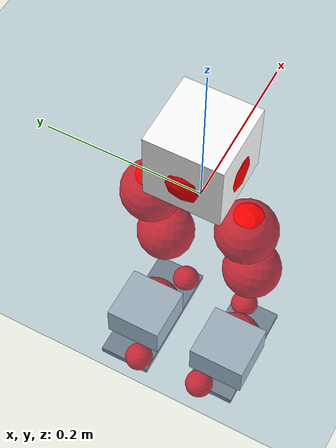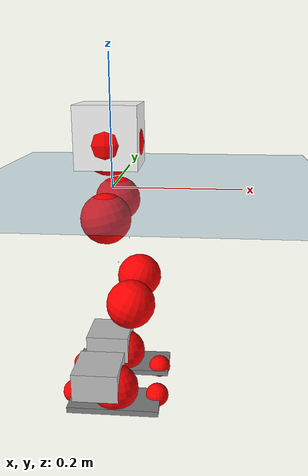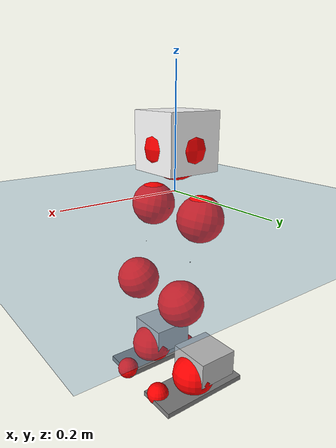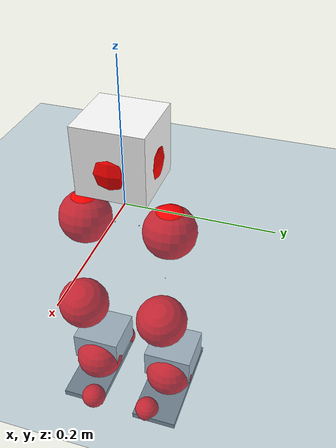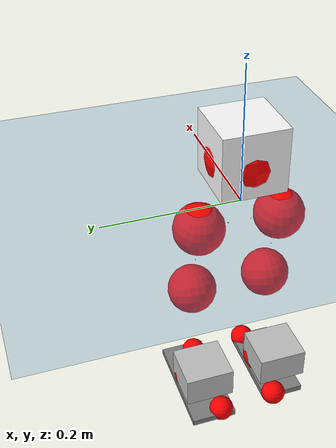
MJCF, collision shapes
<mujoco model="pi_12dof_release_v1">
  <compiler angle="radian" assetdir="assets" balanceinertia="true" inertiafromgeom="false"/>

  <option timestep="0.005" density="1.2" viscosity="2e-05"/>

  <size nkey="1"/>

  <visual>
    <quality shadowsize="8192"/>
    <map shadowclip="0.5"/>
  </visual>

  <default>
    <default class="/">
      <joint armature="0.01" damping="0.01" frictionloss="0.01"/>
      <geom contype="0" conaffinity="0" group="1" solref="-1000 -80"/>
      <site size="0.01 0.005 0.005" group="5"/>
      <general forcelimited="true" biastype="affine" gainprm="20" biasprm="0 -20 -0.5"/>
      <default class="foot">
        <geom size="0.0845 0.036 0.005" type="box" condim="6" group="4" priority="1" friction="0.9 0.2 0.2" solimp="0.015 1 0.005"/>
      </default>
      <default class="reward_collision_sphere">
        <geom group="5" rgba="1 0 0 1"/>
      </default>
    </default>
  </default>

  <asset>
    <texture type="skybox" colorspace="auto" name="//unnamed_texture_0" builtin="gradient" rgb1="0.95 0.95 0.95" rgb2="0.95 0.95 0.95" width="100" height="600"/>
    <texture type="2d" colorspace="auto" name="texplane" builtin="checker" rgb1="0.345 0.575 0.748" rgb2="0.345 0.575 0.748" markrgb="1 1 1" width="512" height="512"/>
    <material name="MatPlane" class="/" texture="texplane" texuniform="true" texrepeat="2 2" specular="0.9"/>
    <mesh name="baselink_1" class="/" file="baselink_1.STL"/>
    <mesh name="r_hip_pitch_link" class="/" file="r_hip_pitch_link.STL"/>
    <mesh name="r_hip_roll_link" class="/" file="r_hip_roll_link.STL"/>
    <mesh name="r_thigh_link" class="/" file="r_thigh_link.STL"/>
    <mesh name="r_calf_link" class="/" file="r_calf_link.STL"/>
    <mesh name="r_ankle_pitch_link" class="/" file="r_ankle_pitch_link.STL"/>
    <mesh name="r_ankle_roll_link" class="/" file="r_ankle_roll_link.STL"/>
    <mesh name="l_hip_pitch_link" class="/" file="l_hip_pitch_link.STL"/>
    <mesh name="l_hip_roll_link" class="/" file="l_hip_roll_link.STL"/>
    <mesh name="l_thigh_link" class="/" file="l_thigh_link.STL"/>
    <mesh name="l_calf_link" class="/" file="l_calf_link.STL"/>
    <mesh name="l_ankle_pitch_link" class="/" file="l_ankle_pitch_link.STL"/>
    <mesh name="l_ankle_roll_link" class="/" file="l_ankle_roll_link.STL"/>
  </asset>

  <worldbody>
    <geom name="floor" class="/" size="100 100 0.125" type="plane" group="0" material="MatPlane"/>
    <light name="toplight_shadow" class="/" pos="0 0 5" dir="0.0990148 0.0990148 -0.990148" type="directional" ambient="0.04 0.04 0.04" diffuse="0.55 0.55 0.55" specular="0.12 0.12 0.12"/>
    <light name="toplight_fill" class="/" pos="0 0 5" dir="0.0990148 0.0990148 -0.990148" type="directional" castshadow="false" ambient="0.04 0.04 0.04" diffuse="0.3 0.3 0.3" specular="0.08 0.08 0.08"/>
    <body name="trunk" pos="-0.00108007 0.000604597 0.000608614" quat="1 -5.46771e-06 3.37855e-06 7.70542e-06">
      <inertial pos="0.000983365 -0.000281936 0.0405183" quat="0.696494 0.00755213 0.0103294 0.717448" mass="1.77147" diaginertia="0.0107024 0.00277258 0.00420102"/>
      <joint name="//unnamed_joint_0" type="free"/>
      <geom name="//unnamed_geom_1" class="/" type="mesh" density="0" rgba="1 1 1 1" mesh="baselink_1"/>
      <geom name="//unnamed_geom_2" class="/" size="0.0468251 0.0468251 0.0468251" pos="0 0 0.0800698" type="box" rgba="1 1 1 1"/>
      <geom name="//unnamed_geom_3" class="reward_collision_sphere" size="0.0515076" pos="0 0 0.0700611"/>
      <site name="imu" class="/" pos="-0.001058 -0.00231976 -0.000572681" size="0.00936502"/>
      <camera name="track" class="/" pos="0 -1.58043 0" quat="0.707107 0.707107 0 0" mode="trackcom"/>
      <camera name="ego_camera" class="/" pos="0.0763814 0 0.180157" quat="-0.5 -0.5 0.5 0.5"/>
      <body name="r_hip_pitch_link" pos="0.000530541 -0.0165636 -0.0339031" quat="0.992215 -0.000359981 -0.124536 0.000109093">
        <inertial pos="-0.000315632 -0.0436326 0.0010383" quat="-0.019614 0.706943 -0.0281703 0.706437" mass="0.303945" diaginertia="0.000118757 3.00489e-05 8.28384e-05"/>
        <joint name="r_hip_pitch_joint" class="/" pos="0 0 0" axis="-0.00652706 -0.999977 -0.00188766" range="-1.74705 1.24595" armature="0.00932102" damping="0.0155705" frictionloss="0.00910903"/>
        <geom name="//unnamed_geom_4" class="/" type="mesh" density="0" rgba="0.75294 0.75294 0.75294 1" mesh="r_hip_pitch_link"/>
        <geom name="//unnamed_geom_5" class="/" size="0.000468251 0.000468251 0.000468251" type="box" rgba="0.75294 0.75294 0.75294 1"/>
        <body name="r_hip_roll_link" pos="0.000510329 -0.0435579 -0.000377365" quat="1 -2.10702e-06 -6.31219e-06 1.4911e-06">
          <inertial pos="0.000124107 -6.33638e-05 -0.0614111" quat="0.706035 -0.0790441 -0.0834887 0.698782" mass="0.318794" diaginertia="0.000366826 8.6048e-05 0.000130206"/>
          <joint name="r_hip_roll_joint" class="/" pos="0 0 0" axis="-1 6.53035e-05 0.000800617" range="-0.121616 0.478533" armature="0.00902896" damping="0.00643771" frictionloss="0.00923631"/>
          <geom name="//unnamed_geom_6" class="/" type="mesh" density="0" rgba="0.75294 0.75294 0.75294 1" mesh="r_hip_roll_link"/>
          <geom name="//unnamed_geom_7" class="/" size="0.000468251 0.000468251 0.000468251" type="box" rgba="0.75294 0.75294 0.75294 1"/>
          <geom name="//unnamed_geom_8" class="reward_collision_sphere" size="0.0374601"/>
          <body name="r_thigh_link" pos="6.99471e-05 0.000719569 -0.0692378" quat="1 -0.000389648 0.00023063 2.68387e-05">
            <inertial pos="-0.000385157 0.000174823 -0.0472233" quat="0.735865 0.677127 -0.000434287 0.000856155" mass="0.0927159" diaginertia="0.00013742 2.88467e-05 5.87679e-05"/>
            <joint name="r_thigh_joint" class="/" pos="0 0 0" axis="0.000135421 0.00335981 -0.999994" range="-0.303929 0.576059" armature="0.00918291" damping="0.00120206" frictionloss="0.0094956"/>
            <geom name="//unnamed_geom_9" class="/" type="mesh" density="0" rgba="0.75294 0.75294 0.75294 1" mesh="r_thigh_link"/>
            <geom name="//unnamed_geom_10" class="/" size="0.000468251 0.000468251 0.000468251" type="box" rgba="0.75294 0.75294 0.75294 1"/>
            <body name="r_calf_link" pos="0.000115411 -0.000750488 -0.0699004" quat="0.947644 0.000257346 0.319328 -0.000289845">
              <inertial pos="-0.000623941 -0.000791189 -0.0699392" quat="0.999977 -0.00296885 -0.000898074 0.0059647" mass="0.677682" diaginertia="0.003804 0.001064 0.000175749"/>
              <joint name="r_calf_joint" class="/" pos="0 0 0" axis="-0.000762218 -0.999999 0.00133938" range="-1.64549 0.640584" armature="0.0101321" damping="0" frictionloss="0.0100348"/>
              <geom name="//unnamed_geom_11" class="/" type="mesh" density="0" rgba="0.75294 0.75294 0.75294 1" mesh="r_calf_link"/>
              <geom name="//unnamed_geom_12" class="/" size="0.000468251 0.000468251 0.000468251" type="box" rgba="0.75294 0.75294 0.75294 1"/>
              <geom name="//unnamed_geom_13" class="reward_collision_sphere" size="0.0374601"/>
              <body name="r_ankle_pitch_link" pos="0.00054616 -0.000188863 -0.139931" quat="0.980043 -0.000496878 -0.198785 -0.000265819">
                <inertial pos="0.00539128 0.0014063 -0.000238572" quat="0.00314126 0.707617 -0.000481317 0.706589" mass="0.142668" diaginertia="0.000339905 6.94146e-05 0.000121116"/>
                <joint name="r_ankle_pitch_joint" class="/" pos="0 0 0" axis="-0.0061211 -0.999965 0.00570281" range="-1.29686 0.497276" armature="0.00907213" damping="0.00922876" frictionloss="0.00968428"/>
                <geom name="//unnamed_geom_14" class="/" type="mesh" density="0" rgba="0.75294 0.75294 0.75294 1" mesh="r_ankle_pitch_link"/>
                <geom name="//unnamed_geom_15" class="/" size="0.0365236 0.0374601 0.0234126" type="box" rgba="0.75294 0.75294 0.75294 1"/>
                <body name="r_ankle_roll_link" pos="0.077224 0.00198919 -0.000256344" quat="1 -6.13828e-05 3.53731e-06 -4.99003e-05">
                  <inertial pos="-0.0255466 0.000222335 -0.0146974" quat="0.559193 0.429313 0.434562 0.56049" mass="0.4272" diaginertia="0.00124485 0.000320043 0.000283594"/>
                  <joint name="r_ankle_roll_joint" class="/" pos="0 0 0" axis="-0.999952 0.00549418 0.0081614" range="-0.152188 0.148991" armature="0.00961545" damping="0.00724879" frictionloss="0.00938792"/>
                  <geom name="//unnamed_geom_16" class="/" type="mesh" density="0" rgba="0.75294 0.75294 0.75294 1" mesh="r_ankle_roll_link"/>
                  <geom name="//unnamed_geom_17" class="/" type="mesh" rgba="0.75294 0.75294 0.75294 1" mesh="r_ankle_roll_link"/>
                  <geom name="right_foot" class="foot" size="0.0728364 0.0324571 0.00476018" pos="-0.0519394 0 -0.0440384"/>
                  <geom name="//unnamed_geom_19" class="reward_collision_sphere" size="0.0374601" pos="-0.0509209 0 -0.0200174"/>
                  <geom name="//unnamed_geom_20" class="reward_collision_sphere" size="0.01873" pos="0.0152763 0.0158043 -0.0400349"/>
                  <geom name="//unnamed_geom_21" class="reward_collision_sphere" size="0.01873" pos="-0.12221 0.0158043 -0.0400349"/>
                  <site name="right_foot" class="foot" pos="-0.0519394 0 -0.0440384" size="0.00936502"/>
                </body>
              </body>
            </body>
          </body>
        </body>
      </body>
      <body name="l_hip_pitch_link" pos="-0.000171649 0.018002 -0.0331748" quat="0.992214 -0.00092153 -0.124543 -4.64479e-06">
        <inertial pos="0.00194143 0.0423604 -0.000444929" quat="-0.0386447 0.705659 0.02958 0.706878" mass="0.320378" diaginertia="0.000140149 3.20759e-05 0.00010049"/>
        <joint name="l_hip_pitch_joint" class="/" pos="0 0 0" axis="-0.000740199 1 0.000276934" stiffness="0.00163909" range="-1.26545 1.74594" armature="0.00923637" damping="0.00398684" frictionloss="0.00901787"/>
        <geom name="//unnamed_geom_22" class="/" type="mesh" density="0" rgba="0.75294 0.75294 0.75294 1" mesh="l_hip_pitch_link"/>
        <geom name="//unnamed_geom_23" class="/" size="0.000468251 0.000468251 0.000468251" type="box" rgba="0.75294 0.75294 0.75294 1"/>
        <body name="l_hip_roll_link" pos="-0.000256259 0.043553 -0.000117652" quat="1 0.000149641 0.000364692 0.000122791">
          <inertial pos="-0.00122697 -0.000188985 -0.0617273" quat="0.698206 -0.0750863 -0.0766811 0.707807" mass="0.318723" diaginertia="0.000365501 8.57954e-05 0.000128717"/>
          <joint name="l_hip_roll_joint" class="/" pos="0 0 0" axis="-0.999988 -0.0025355 -0.00411536" range="-0.498059 0.129423" armature="0.00915487" damping="0" frictionloss="0.00892735"/>
          <geom name="//unnamed_geom_24" class="/" type="mesh" density="0" rgba="0.75294 0.75294 0.75294 1" mesh="l_hip_roll_link"/>
          <geom name="//unnamed_geom_25" class="/" size="0.000468251 0.000468251 0.000468251" type="box" rgba="0.75294 0.75294 0.75294 1"/>
          <geom name="//unnamed_geom_26" class="reward_collision_sphere" size="0.0374601"/>
          <body name="l_thigh_link" pos="0.00051738 -0.000620821 -0.0702424" quat="1 -1.31304e-05 -2.57005e-06 4.24268e-05">
            <inertial pos="0.000506737 -0.00144478 -0.0487781" quat="0.675677 0.737197 -0.000277275 -4.05277e-05" mass="0.0927958" diaginertia="0.000137171 2.91353e-05 5.85291e-05"/>
            <joint name="l_thigh_joint" class="/" pos="0 0 0" axis="0.000604431 0.00191407 -0.999998" range="-0.599836 0.286092" armature="0.0098531" damping="0.00401982" frictionloss="0.00916897"/>
            <geom name="//unnamed_geom_27" class="/" type="mesh" density="0" rgba="0.75294 0.75294 0.75294 1" mesh="l_thigh_link"/>
            <geom name="//unnamed_geom_28" class="/" size="0.000468251 0.000468251 0.000468251" type="box" rgba="0.75294 0.75294 0.75294 1"/>
            <body name="l_calf_link" pos="-0.000284522 -7.23787e-05 -0.0704735" quat="0.947594 -3.16566e-05 0.319478 1.07614e-05">
              <inertial pos="0.00033694 0.00193233 -0.0703089" quat="0.999986 0.00485052 0.000829368 0.00206322" mass="0.667819" diaginertia="0.0038139 0.0010674 0.000176803"/>
              <joint name="l_calf_joint" class="/" pos="0 0 0" axis="0.00217606 0.999998 2.09529e-06" stiffness="0.00278688" range="-0.660704 1.66117" armature="0.00878362" damping="0.0068886" frictionloss="0.00990705"/>
              <geom name="//unnamed_geom_29" class="/" type="mesh" density="0" rgba="0.75294 0.75294 0.75294 1" mesh="l_calf_link"/>
              <geom name="//unnamed_geom_30" class="/" size="0.000468251 0.000468251 0.000468251" type="box" rgba="0.75294 0.75294 0.75294 1"/>
              <geom name="//unnamed_geom_31" class="reward_collision_sphere" size="0.0374601"/>
              <body name="l_ankle_pitch_link" pos="0.00030737 0.0013597 -0.140086" quat="0.980005 6.06044e-05 -0.198971 -0.000202345">
                <inertial pos="0.00493654 0.000198129 -0.000260391" quat="-0.00258874 0.707107 0.00240807 0.707098" mass="0.147079" diaginertia="0.000342272 6.86285e-05 0.000120104"/>
                <joint name="l_ankle_pitch_joint" class="/" pos="0 0 0" axis="0.00116018 0.999997 0.00213343" range="-0.513678 1.30355" armature="0.00937845" damping="0.00517698" frictionloss="0.00900882"/>
                <geom name="//unnamed_geom_32" class="/" type="mesh" density="0" rgba="0.75294 0.75294 0.75294 1" mesh="l_ankle_pitch_link"/>
                <geom name="//unnamed_geom_33" class="/" size="0.0365236 0.0374601 0.0234126" type="box" rgba="0.75294 0.75294 0.75294 1"/>
                <body name="l_ankle_roll_link" pos="0.075416 0.00103247 0.000239268" quat="1 -7.55727e-05 -0.000150327 3.23229e-05">
                  <inertial pos="-0.023626 9.26407e-05 -0.0155027" quat="0.558571 0.429193 0.434409 0.561321" mass="0.426921" diaginertia="0.00120629 0.00031485 0.000277611"/>
                  <joint name="l_ankle_roll_joint" class="/" pos="0 0 0" axis="-1 -0.000381982 0.000599512" range="-0.153374 0.152101" armature="0.00925964" damping="0.00289395" frictionloss="0.00948251"/>
                  <geom name="//unnamed_geom_34" class="/" type="mesh" density="0" rgba="0.75294 0.75294 0.75294 1" mesh="l_ankle_roll_link"/>
                  <geom name="//unnamed_geom_35" class="/" type="mesh" rgba="0.75294 0.75294 0.75294 1" mesh="l_ankle_roll_link"/>
                  <geom name="left_foot" class="foot" size="0.0828966 0.0344949 0.00458944" pos="-0.0519394 0 -0.0440384"/>
                  <geom name="//unnamed_geom_37" class="reward_collision_sphere" size="0.0374601" pos="-0.0509209 0 -0.0200174"/>
                  <geom name="//unnamed_geom_38" class="reward_collision_sphere" size="0.01873" pos="0.0152763 -0.0158043 -0.0400349"/>
                  <geom name="//unnamed_geom_39" class="reward_collision_sphere" size="0.01873" pos="-0.12221 -0.0158043 -0.0400349"/>
                  <site name="left_foot" class="foot" pos="-0.0519394 0 -0.0440384" size="0.00936502"/>
                </body>
              </body>
            </body>
          </body>
        </body>
      </body>
    </body>
  </worldbody>

  <contact>
    <pair class="/" geom1="floor" geom2="right_foot" name="//unnamed_contact_1"/>
    <pair class="/" geom1="floor" geom2="left_foot" name="//unnamed_contact_0"/>
  </contact>

  <actuator>
    <general name="r_hip_pitch_joint" class="/" joint="r_hip_pitch_joint" forcerange="-19.3644 19.3644" gainprm="19.028" biasprm="0 -19.028 -0.481938"/>
    <general name="r_hip_roll_joint" class="/" joint="r_hip_roll_joint" forcerange="-19.6764 19.6764" gainprm="19.028" biasprm="0 -19.028 -0.481938"/>
    <general name="r_thigh_joint" class="/" joint="r_thigh_joint" forcerange="-19.7646 19.7646" gainprm="19.028" biasprm="0 -19.028 -0.481938"/>
    <general name="r_calf_joint" class="/" joint="r_calf_joint" forcerange="-19.2607 19.2607" gainprm="19.028" biasprm="0 -19.028 -0.481938"/>
    <general name="r_ankle_pitch_joint" class="/" joint="r_ankle_pitch_joint" forcerange="-20.0046 20.0046" gainprm="19.028" biasprm="0 -19.028 -0.481938"/>
    <general name="r_ankle_roll_joint" class="/" joint="r_ankle_roll_joint" forcerange="-19.27 19.27" gainprm="19.028" biasprm="0 -19.028 -0.481938"/>
    <general name="l_hip_pitch_joint" class="/" joint="l_hip_pitch_joint" forcerange="-19.9064 19.9064" gainprm="19.028" biasprm="0 -19.028 -0.481938"/>
    <general name="l_hip_roll_joint" class="/" joint="l_hip_roll_joint" forcerange="-20.3786 20.3786" gainprm="19.028" biasprm="0 -19.028 -0.481938"/>
    <general name="l_thigh_joint" class="/" joint="l_thigh_joint" forcerange="-19.7131 19.7131" gainprm="19.028" biasprm="0 -19.028 -0.481938"/>
    <general name="l_calf_joint" class="/" joint="l_calf_joint" forcerange="-20.7349 20.7349" gainprm="19.028" biasprm="0 -19.028 -0.481938"/>
    <general name="l_ankle_pitch_joint" class="/" joint="l_ankle_pitch_joint" forcerange="-19.566 19.566" gainprm="19.028" biasprm="0 -19.028 -0.481938"/>
    <general name="l_ankle_roll_joint" class="/" joint="l_ankle_roll_joint" forcerange="-19.9273 19.9273" gainprm="19.028" biasprm="0 -19.028 -0.481938"/>
  </actuator>

  <sensor>
    <gyro site="imu" name="imu_angular_velocity"/>
    <velocimeter site="imu" name="imu_linear_velocity"/>
    <framelinvel objtype="site" objname="left_foot" name="left_foot_global_linear_velocity"/>
    <framelinvel objtype="site" objname="right_foot" name="right_foot_global_linear_velocity"/>
  </sensor>

  <keyframe>
    <key name="home" qpos="0 0 0.291 1 0 0 0 0.4 0 0 -0.8 0.4 0 -0.4 0 0 0.8 -0.4 0"/>
  </keyframe>
</mujoco>
